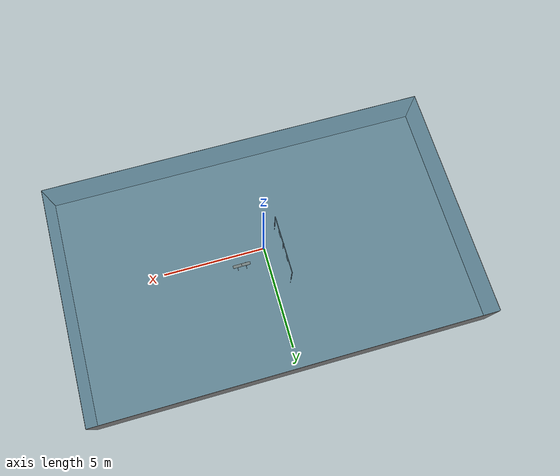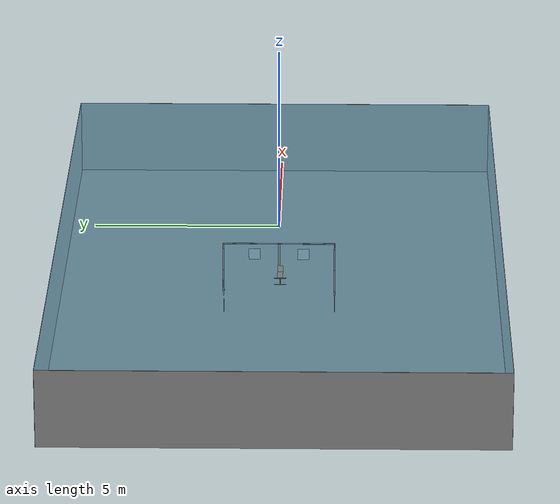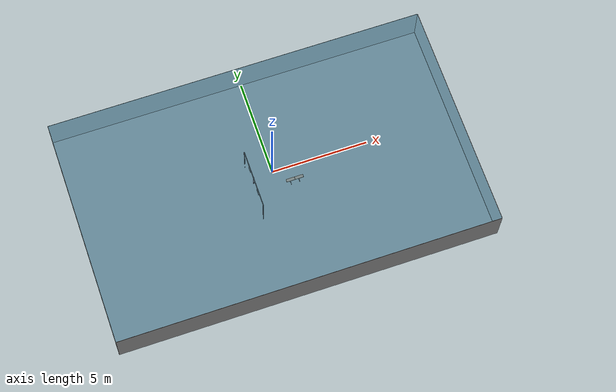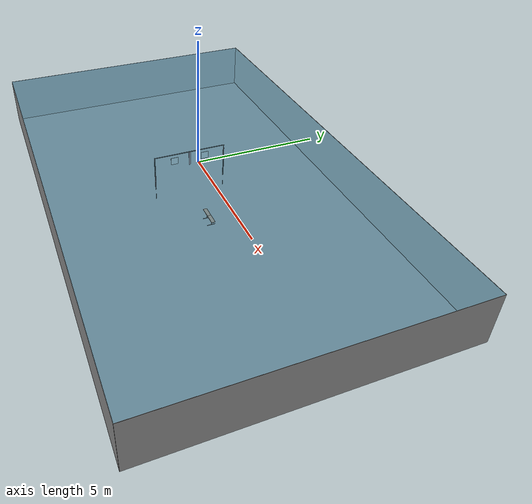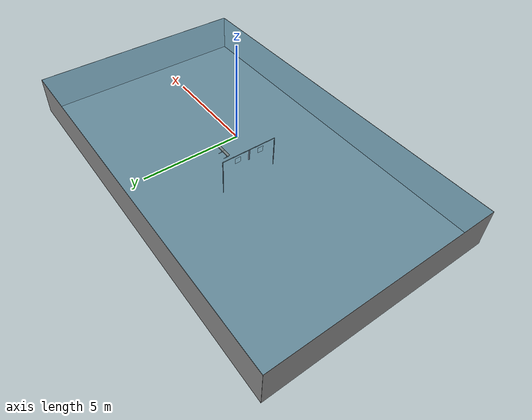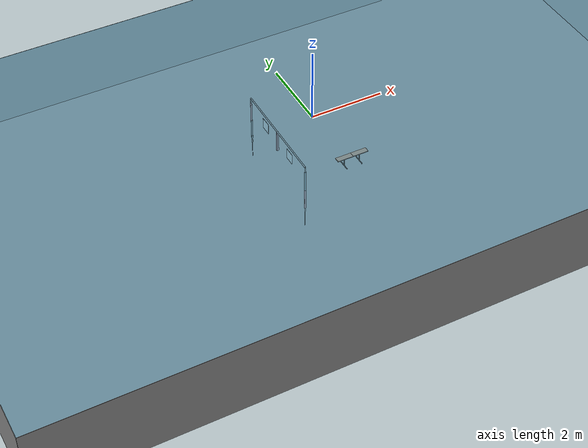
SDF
<sdf version="1.9">
 <world name="rs_task_gate">
  <plugin filename="gz-sim-particle-emitter-system" name="gz::sim::systems::ParticleEmitter"/>
  <plugin filename="gz-sim-physics-system" name="gz::sim::systems::Physics"/>
  <plugin filename="gz-sim-user-commands-system" name="gz::sim::systems::UserCommands"/>
  <plugin filename="gz-sim-scene-broadcaster-system" name="gz::sim::systems::SceneBroadcaster"/>
  <plugin filename="gz-sim-apply-link-wrench-system" name="gz::sim::systems::ApplyLinkWrench"/>
  <plugin filename="gz-sim-imu-system" name="gz::sim::systems::Imu"/>
  <plugin filename="gz-sim-sensors-system" name="gz::sim::systems::Sensors">
   <render_engine>ogre2</render_engine>
  </plugin>
  <plugin filename="gz-sim-dvl-system" name="gz::sim::systems::DopplerVelocityLogSystem"/>
  <plugin filename="gz-sim-buoyancy-system" name="gz::sim::systems::Buoyancy">
   <graded_buoyancy>
    <default_density>1000</default_density>
    <density_change><above_depth>0</above_depth><density>1</density></density_change>
   </graded_buoyancy>
   <enable>mongla</enable>
   <enable>gate</enable>
   <enable>payload_shot_0</enable>
   <enable>payload_shot_1</enable>
   <enable>payload_shot_2</enable>
   <enable>payload_shot_3</enable>
   <enable>payload_shot_4</enable>
   <enable>payload_shot_5</enable>
   <enable>payload_shot_6</enable>
   <enable>payload_shot_7</enable>
   <enable>payload_shot_8</enable>
   <enable>payload_shot_9</enable>
   <enable>payload_shot_10</enable>
   <enable>payload_shot_11</enable>
  </plugin>
  <physics name="default" type="dart">
   <max_step_size>0.001</max_step_size>
   <real_time_factor>1.0</real_time_factor>
   <real_time_update_rate>1000</real_time_update_rate>
   <dart>
    <collision_detector>bullet</collision_detector>
    <solver><solver_type>dantzig</solver_type></solver>
   </dart>
  </physics>
  <gravity>0 0 -9.81</gravity>
  <magnetic_field>3.9e-05 1.1e-06 2.6e-05</magnetic_field>
  <atmosphere type="adiabatic"/>
  <scene>
   <ambient>0.4 0.5 0.55 1</ambient>
   <background>0.08 0.26 0.4 1</background>
   <shadows>true</shadows>
   <fog>
    <color>0.14 0.34 0.42 1</color>
    <type>linear</type>
    <start>3.0</start>
    <end>40.0</end>
    <density>0.01</density>
   </fog>
  </scene>
  <light type="directional" name="sun">
   <pose>0 0 10 0 0 0</pose>
   <diffuse>0.48 0.52 0.56 1</diffuse>
   <specular>0.10 0.10 0.11 1</specular>
   <direction>-0.4 0.15 -0.9</direction>
  </light>
  <light type="directional" name="fill">
   <cast_shadows>false</cast_shadows>
   <pose>0 0 5 0 0 0</pose>
   <diffuse>0.22 0.28 0.34 1</diffuse>
   <specular>0.04 0.05 0.06 1</specular>
   <direction>0.3 -0.2 -1</direction>
  </light>
  <light type="directional" name="caustic_fill">
   <cast_shadows>false</cast_shadows>
   <pose>0 0 3 0 0 0</pose>
   <diffuse>0.12 0.22 0.26 1</diffuse>
   <specular>0.02 0.03 0.04 1</specular>
   <direction>0.1 0.35 -0.85</direction>
  </light>
  <model name="robosub_pool">
   <static>true</static>
   <link name="floor">
    <pose>0 0 -2.1 0 0 0</pose>
    <inertial>
     <mass>1000</mass>
     <inertia><ixx>1000</ixx><ixy>0</ixy><ixz>0</ixz><iyy>1000</iyy><iyz>0</iyz><izz>1000</izz></inertia>
    </inertial>
    <visual name="floor_visual">
     <pose>0 0 0.005 0 0 0</pose>
     <geometry><box><size>20 12 0.01</size></box></geometry>
     <material>
      <ambient>0.55 0.55 0.55 1</ambient>
      <diffuse>0.55 0.55 0.55 1</diffuse>
      <specular>0.08 0.08 0.08 1</specular>
      <emissive>0 0 0 1</emissive>
      <pbr>
       <metal>
        <albedo_map>model://robosub_textures/pool_floor.png</albedo_map>
        <metalness>0.0</metalness>
        <roughness>0.85</roughness>
       </metal>
      </pbr>
     </material>
    </visual>
    <collision name="floor_collision">
     <pose>0 0 -0.05 0 0 0</pose>
     <geometry><box><size>20 12 0.1</size></box></geometry>
    </collision>
   </link>
   <link name="wall_x_pos">
    <inertial>
     <mass>1000</mass>
     <inertia><ixx>1000</ixx><ixy>0</ixy><ixz>0</ixz><iyy>1000</iyy><iyz>0</iyz><izz>1000</izz></inertia>
    </inertial>
    <visual name="wall_x_pos_visual">
     <pose>10 0 -1.05 0 0 0</pose>
     <geometry><box><size>0.01 12 2.1</size></box></geometry>
     <material>
      <ambient>0.55 0.55 0.55 1</ambient>
      <diffuse>0.55 0.55 0.55 1</diffuse>
      <specular>0.08 0.08 0.08 1</specular>
      <emissive>0 0 0 1</emissive>
      <pbr>
       <metal>
        <albedo_map>model://robosub_textures/pool_wall_long.png</albedo_map>
        <metalness>0.0</metalness>
        <roughness>0.85</roughness>
       </metal>
      </pbr>
     </material>
    </visual>
    <collision name="wall_x_pos_collision">
     <pose>10.105 0 -1.05 0 0 0</pose>
     <geometry><box><size>0.2 12.4 2.1</size></box></geometry>
    </collision>
   </link>
   <link name="wall_x_neg">
    <inertial>
     <mass>1000</mass>
     <inertia><ixx>1000</ixx><ixy>0</ixy><ixz>0</ixz><iyy>1000</iyy><iyz>0</iyz><izz>1000</izz></inertia>
    </inertial>
    <visual name="wall_x_neg_visual">
     <pose>-10 0 -1.05 0 0 0</pose>
     <geometry><box><size>0.01 12 2.1</size></box></geometry>
     <material>
      <ambient>0.55 0.55 0.55 1</ambient>
      <diffuse>0.55 0.55 0.55 1</diffuse>
      <specular>0.08 0.08 0.08 1</specular>
      <emissive>0 0 0 1</emissive>
      <pbr>
       <metal>
        <albedo_map>model://robosub_textures/pool_wall_long.png</albedo_map>
        <metalness>0.0</metalness>
        <roughness>0.85</roughness>
       </metal>
      </pbr>
     </material>
    </visual>
    <collision name="wall_x_neg_collision">
     <pose>-10.105 0 -1.05 0 0 0</pose>
     <geometry><box><size>0.2 12.4 2.1</size></box></geometry>
    </collision>
   </link>
   <link name="wall_y_pos">
    <inertial>
     <mass>1000</mass>
     <inertia><ixx>1000</ixx><ixy>0</ixy><ixz>0</ixz><iyy>1000</iyy><iyz>0</iyz><izz>1000</izz></inertia>
    </inertial>
    <visual name="wall_y_pos_visual">
     <pose>0 6 -1.05 0 0 0</pose>
     <geometry><box><size>20 0.01 2.1</size></box></geometry>
     <material>
      <ambient>0.55 0.55 0.55 1</ambient>
      <diffuse>0.55 0.55 0.55 1</diffuse>
      <specular>0.08 0.08 0.08 1</specular>
      <emissive>0 0 0 1</emissive>
      <pbr>
       <metal>
        <albedo_map>model://robosub_textures/pool_wall_short.png</albedo_map>
        <metalness>0.0</metalness>
        <roughness>0.85</roughness>
       </metal>
      </pbr>
     </material>
    </visual>
    <collision name="wall_y_pos_collision">
     <pose>0 6.105 -1.05 0 0 0</pose>
     <geometry><box><size>20 0.2 2.1</size></box></geometry>
    </collision>
   </link>
   <link name="wall_y_neg">
    <inertial>
     <mass>1000</mass>
     <inertia><ixx>1000</ixx><ixy>0</ixy><ixz>0</ixz><iyy>1000</iyy><iyz>0</iyz><izz>1000</izz></inertia>
    </inertial>
    <visual name="wall_y_neg_visual">
     <pose>0 -6 -1.05 0 0 0</pose>
     <geometry><box><size>20 0.01 2.1</size></box></geometry>
     <material>
      <ambient>0.55 0.55 0.55 1</ambient>
      <diffuse>0.55 0.55 0.55 1</diffuse>
      <specular>0.08 0.08 0.08 1</specular>
      <emissive>0 0 0 1</emissive>
      <pbr>
       <metal>
        <albedo_map>model://robosub_textures/pool_wall_short.png</albedo_map>
        <metalness>0.0</metalness>
        <roughness>0.85</roughness>
       </metal>
      </pbr>
     </material>
    </visual>
    <collision name="wall_y_neg_collision">
     <pose>0 -6.105 -1.05 0 0 0</pose>
     <geometry><box><size>20 0.2 2.1</size></box></geometry>
    </collision>
   </link>
   <link name="water_surface">
    <inertial>
     <mass>1</mass>
     <inertia><ixx>1</ixx><ixy>0</ixy><ixz>0</ixz><iyy>1</iyy><iyz>0</iyz><izz>1</izz></inertia>
    </inertial>
    <visual name="water_surface_visual">
     <cast_shadows>false</cast_shadows>
     <transparency>0.18</transparency>
     <geometry><mesh><uri>model://robosub_meshes/meshes/water_robosub.obj</uri></mesh></geometry>
     <material>
      <ambient>0.42 0.6 0.68 1</ambient>
      <diffuse>0.42 0.6 0.68 1</diffuse>
      <specular>0.35 0.35 0.35 1</specular>
      <emissive>0.1 0.1 0.1 1</emissive>
      <pbr>
       <metal>
        <albedo_map>model://robosub_textures/water_surface.png</albedo_map>
        <metalness>0.0</metalness>
        <roughness>0.15</roughness>
       </metal>
      </pbr>
     </material>
    </visual>
   </link>
  </model>
  <model name="marine_snow">
   <static>true</static>
   <pose>0 0 -1.05 0 0 0</pose>
   <link name="link">
    <particle_emitter name="snow" type="box">
     <emitting>true</emitting>
     <size>12 12 2.1</size>
     <particle_size>0.006 0.006 0.006</particle_size>
     <lifetime>30</lifetime>
     <min_velocity>0.004</min_velocity>
     <max_velocity>0.025</max_velocity>
     <scale_rate>0</scale_rate>
     <rate>900</rate>
     <topic>marine_snow</topic>
     <material>
      <diffuse>0.80 0.84 0.80</diffuse>
      <specular>0.05 0.05 0.05</specular>
      <pbr><metal><albedo_map>model://robosub_textures/marine_snow.png</albedo_map></metal></pbr>
     </material>
    </particle_emitter>
   </link>
  </model>
  <include><uri>model://robosub_gate</uri><name>gate</name><pose>-1 0 0 0 0 0</pose></include>
  <include><uri>model://robosub_path_marker</uri><name>path_out</name><pose>1.2 0 -2.1 0 0 0</pose></include>
 </world>
</sdf>

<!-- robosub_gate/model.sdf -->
<sdf version="1.9">
  <model name="robosub_gate">
    <static>false</static>
    <plugin filename="gz-sim-label-system" name="gz::sim::systems::Label">
      <label>12</label>
    </plugin>
    <link name="top_bar">
      <pose>0 0 -0.1 1.5708 0 0</pose>
      <inertial>
        <pose>0 0 0 0 0 0</pose>
        <mass>5</mass>
        <inertia>
          <ixx>3.75035</ixx><ixy>0</ixy><ixz>0</ixz>
          <iyy>3.75035</iyy><iyz>0</iyz>
          <izz>0.000697225</izz>
        </inertia>
      </inertial>
      <visual name="top_bar_visual">
        <pose>0 0 0 0 0 0</pose>
        <geometry><cylinder><radius>0.0167</radius><length>3</length></cylinder></geometry>
        <material>
          <ambient>0.92 0.92 0.92 1</ambient>
          <diffuse>0.92 0.92 0.92 1</diffuse>
          <specular>0.55 0.55 0.55 1</specular>
          <emissive>0.258 0.258 0.258 1</emissive>
          <pbr>
            <metal>
              <albedo_map>model://robosub_textures/albedo_pvc.png</albedo_map>
              <metalness>0.0</metalness>
              <roughness_map>model://robosub_textures/rough_pvc.png</roughness_map>
              <normal_map>model://robosub_textures/norm_pvc.png</normal_map>
            </metal>
          </pbr>
        </material>
      </visual>
      <collision name="top_bar_collision">
        <pose>0 0 0 0 0 0</pose>
        <geometry><cylinder><radius>0.0167</radius><length>3</length></cylinder></geometry>
      </collision>
    </link>
    <link name="post_port">
      <pose>0 -1.5 -0.85 0 0 0</pose>
      <inertial>
        <pose>0 0 0 0 0 0</pose>
        <mass>4</mass>
        <inertia>
          <ixx>0.750279</ixx><ixy>0</ixy><ixz>0</ixz>
          <iyy>0.750279</iyy><iyz>0</iyz>
          <izz>0.00055778</izz>
        </inertia>
      </inertial>
      <visual name="post_port_visual">
        <pose>0 0 0 0 0 0</pose>
        <geometry><cylinder><radius>0.0167</radius><length>1.5</length></cylinder></geometry>
        <material>
          <ambient>0.92 0.92 0.92 1</ambient>
          <diffuse>0.92 0.92 0.92 1</diffuse>
          <specular>0.55 0.55 0.55 1</specular>
          <emissive>0.258 0.258 0.258 1</emissive>
          <pbr>
            <metal>
              <albedo_map>model://robosub_textures/albedo_pvc.png</albedo_map>
              <metalness>0.0</metalness>
              <roughness_map>model://robosub_textures/rough_pvc.png</roughness_map>
              <normal_map>model://robosub_textures/norm_pvc.png</normal_map>
            </metal>
          </pbr>
        </material>
      </visual>
      <collision name="post_port_collision">
        <pose>0 0 0 0 0 0</pose>
        <geometry><cylinder><radius>0.0167</radius><length>1.5</length></cylinder></geometry>
      </collision>
    </link>
    <link name="band_port_upper">
      <pose>0 -1.5 -0.5572 0 0 0</pose>
      <inertial>
        <pose>0 0 0 0 0 0</pose>
        <mass>0.4</mass>
        <inertia>
          <ixx>0.0124306</ixx><ixy>0</ixy><ixz>0</ixz>
          <iyy>0.0124306</iyy><iyz>0</iyz>
          <izz>8.71531e-05</izz>
        </inertia>
      </inertial>
      <visual name="band_port_upper_visual">
        <pose>0 0 0 0 0 0</pose>
        <geometry><cylinder><radius>0.020875</radius><length>0.6096</length></cylinder></geometry>
        <material>
          <ambient>0.07 0.07 0.08 1</ambient>
          <diffuse>0.07 0.07 0.08 1</diffuse>
          <specular>0.2 0.2 0.2 1</specular>
          <emissive>0.0154 0.0154 0.0176 1</emissive>
        </material>
      </visual>
    </link>
    <link name="band_port_lower">
      <pose>0 -1.5 -1.1668 0 0 0</pose>
      <inertial>
        <pose>0 0 0 0 0 0</pose>
        <mass>0.4</mass>
        <inertia>
          <ixx>0.0124306</ixx><ixy>0</ixy><ixz>0</ixz>
          <iyy>0.0124306</iyy><iyz>0</iyz>
          <izz>8.71531e-05</izz>
        </inertia>
      </inertial>
      <visual name="band_port_lower_visual">
        <pose>0 0 0 0 0 0</pose>
        <geometry><cylinder><radius>0.020875</radius><length>0.6096</length></cylinder></geometry>
        <material>
          <ambient>0.72 0.11 0.13 1</ambient>
          <diffuse>0.72 0.11 0.13 1</diffuse>
          <specular>0.2 0.2 0.2 1</specular>
          <emissive>0.1584 0.0242 0.0286 1</emissive>
        </material>
      </visual>
    </link>
    <link name="post_stbd">
      <pose>0 1.5 -0.85 0 0 0</pose>
      <inertial>
        <pose>0 0 0 0 0 0</pose>
        <mass>4</mass>
        <inertia>
          <ixx>0.750279</ixx><ixy>0</ixy><ixz>0</ixz>
          <iyy>0.750279</iyy><iyz>0</iyz>
          <izz>0.00055778</izz>
        </inertia>
      </inertial>
      <visual name="post_stbd_visual">
        <pose>0 0 0 0 0 0</pose>
        <geometry><cylinder><radius>0.0167</radius><length>1.5</length></cylinder></geometry>
        <material>
          <ambient>0.92 0.92 0.92 1</ambient>
          <diffuse>0.92 0.92 0.92 1</diffuse>
          <specular>0.55 0.55 0.55 1</specular>
          <emissive>0.258 0.258 0.258 1</emissive>
          <pbr>
            <metal>
              <albedo_map>model://robosub_textures/albedo_pvc.png</albedo_map>
              <metalness>0.0</metalness>
              <roughness_map>model://robosub_textures/rough_pvc.png</roughness_map>
              <normal_map>model://robosub_textures/norm_pvc.png</normal_map>
            </metal>
          </pbr>
        </material>
      </visual>
      <collision name="post_stbd_collision">
        <pose>0 0 0 0 0 0</pose>
        <geometry><cylinder><radius>0.0167</radius><length>1.5</length></cylinder></geometry>
      </collision>
    </link>
    <link name="band_stbd_upper">
      <pose>0 1.5 -0.5572 0 0 0</pose>
      <inertial>
        <pose>0 0 0 0 0 0</pose>
        <mass>0.4</mass>
        <inertia>
          <ixx>0.0124306</ixx><ixy>0</ixy><ixz>0</ixz>
          <iyy>0.0124306</iyy><iyz>0</iyz>
          <izz>8.71531e-05</izz>
        </inertia>
      </inertial>
      <visual name="band_stbd_upper_visual">
        <pose>0 0 0 0 0 0</pose>
        <geometry><cylinder><radius>0.020875</radius><length>0.6096</length></cylinder></geometry>
        <material>
          <ambient>0.72 0.11 0.13 1</ambient>
          <diffuse>0.72 0.11 0.13 1</diffuse>
          <specular>0.2 0.2 0.2 1</specular>
          <emissive>0.1584 0.0242 0.0286 1</emissive>
        </material>
      </visual>
    </link>
    <link name="band_stbd_lower">
      <pose>0 1.5 -1.1668 0 0 0</pose>
      <inertial>
        <pose>0 0 0 0 0 0</pose>
        <mass>0.4</mass>
        <inertia>
          <ixx>0.0124306</ixx><ixy>0</ixy><ixz>0</ixz>
          <iyy>0.0124306</iyy><iyz>0</iyz>
          <izz>8.71531e-05</izz>
        </inertia>
      </inertial>
      <visual name="band_stbd_lower_visual">
        <pose>0 0 0 0 0 0</pose>
        <geometry><cylinder><radius>0.020875</radius><length>0.6096</length></cylinder></geometry>
        <material>
          <ambient>0.07 0.07 0.08 1</ambient>
          <diffuse>0.07 0.07 0.08 1</diffuse>
          <specular>0.2 0.2 0.2 1</specular>
          <emissive>0.0154 0.0154 0.0176 1</emissive>
        </material>
      </visual>
    </link>
    <link name="divider">
      <pose>0 0 -0.4048 0 0 0</pose>
      <inertial>
        <pose>0 0 0 0 0 0</pose>
        <mass>0.5</mass>
        <inertia>
          <ixx>0.0155914</ixx><ixy>0</ixy><ixz>0</ixz>
          <iyy>0.0155914</iyy><iyz>0</iyz>
          <izz>0.000215053</izz>
        </inertia>
      </inertial>
      <visual name="divider_visual">
        <pose>0 0 0 0 0 0</pose>
        <geometry><box><size>0.0508 0.0508 0.6096</size></box></geometry>
        <material>
          <ambient>0.72 0.11 0.13 1</ambient>
          <diffuse>0.72 0.11 0.13 1</diffuse>
          <specular>0.2 0.2 0.2 1</specular>
          <emissive>0.1584 0.0242 0.0286 1</emissive>
        </material>
      </visual>
      <collision name="divider_collision">
        <pose>0 0 0 0 0 0</pose>
        <geometry><box><size>0.0508 0.0508 0.6096</size></box></geometry>
      </collision>
    </link>
    <link name="sign_survey_repair">
      <pose>0 -0.66 -0.4049 0 0 0</pose>
      <inertial>
        <pose>0 0 0 0 0 0</pose>
        <mass>0.15</mass>
        <inertia>
          <ixx>0.00232562</ixx><ixy>0</ixy><ixz>0</ixz>
          <iyy>0.00116301</iyy><iyz>0</iyz>
          <izz>0.00116301</izz>
        </inertia>
      </inertial>
      <visual name="sign_survey_repair_visual">
        <pose>0 0 0 0 0 0</pose>
        <geometry><box><size>0.004 0.305 0.305</size></box></geometry>
        <material>
          <ambient>1 1 1 1</ambient>
          <diffuse>1 1 1 1</diffuse>
          <specular>0.06 0.06 0.06 1</specular>
          <emissive>0.1 0.1 0.1 1</emissive>
          <pbr>
            <metal>
              <albedo_map>model://robosub_textures/role_compass.png</albedo_map>
              <metalness>0.0</metalness>
              <roughness>0.55</roughness>
            </metal>
          </pbr>
        </material>
      </visual>
      <collision name="sign_survey_repair_collision">
        <pose>0 0 0 0 0 0</pose>
        <geometry><box><size>0.004 0.305 0.305</size></box></geometry>
      </collision>
    </link>
    <link name="sign_search_rescue">
      <pose>0 0.66 -0.4049 0 0 0</pose>
      <inertial>
        <pose>0 0 0 0 0 0</pose>
        <mass>0.15</mass>
        <inertia>
          <ixx>0.00232562</ixx><ixy>0</ixy><ixz>0</ixz>
          <iyy>0.00116301</iyy><iyz>0</iyz>
          <izz>0.00116301</izz>
        </inertia>
      </inertial>
      <visual name="sign_search_rescue_visual">
        <pose>0 0 0 0 0 0</pose>
        <geometry><box><size>0.004 0.305 0.305</size></box></geometry>
        <material>
          <ambient>1 1 1 1</ambient>
          <diffuse>1 1 1 1</diffuse>
          <specular>0.06 0.06 0.06 1</specular>
          <emissive>0.1 0.1 0.1 1</emissive>
          <pbr>
            <metal>
              <albedo_map>model://robosub_textures/role_sos.png</albedo_map>
              <metalness>0.0</metalness>
              <roughness>0.55</roughness>
            </metal>
          </pbr>
        </material>
      </visual>
      <collision name="sign_search_rescue_collision">
        <pose>0 0 0 0 0 0</pose>
        <geometry><box><size>0.004 0.305 0.305</size></box></geometry>
      </collision>
    </link>
    <link name="mooring_port">
      <pose>0 -1.5 -1.85 0 0 0</pose>
      <inertial>
        <pose>0 0 0 0 0 0</pose>
        <mass>0.1</mass>
        <inertia>
          <ixx>0.00208423</ixx><ixy>0</ixy><ixz>0</ixz>
          <iyy>0.00208423</iyy><iyz>0</iyz>
          <izz>1.8e-06</izz>
        </inertia>
      </inertial>
      <visual name="mooring_port_visual">
        <pose>0 0 0 0 0 0</pose>
        <geometry><cylinder><radius>0.006</radius><length>0.5</length></cylinder></geometry>
        <material>
          <ambient>0.15 0.15 0.14 1</ambient>
          <diffuse>0.15 0.15 0.14 1</diffuse>
          <specular>0.2 0.2 0.2 1</specular>
          <emissive>0.0375 0.0375 0.035 1</emissive>
        </material>
      </visual>
    </link>
    <link name="mooring_stbd">
      <pose>0 1.5 -1.85 0 0 0</pose>
      <inertial>
        <pose>0 0 0 0 0 0</pose>
        <mass>0.1</mass>
        <inertia>
          <ixx>0.00208423</ixx><ixy>0</ixy><ixz>0</ixz>
          <iyy>0.00208423</iyy><iyz>0</iyz>
          <izz>1.8e-06</izz>
        </inertia>
      </inertial>
      <visual name="mooring_stbd_visual">
        <pose>0 0 0 0 0 0</pose>
        <geometry><cylinder><radius>0.006</radius><length>0.5</length></cylinder></geometry>
        <material>
          <ambient>0.15 0.15 0.14 1</ambient>
          <diffuse>0.15 0.15 0.14 1</diffuse>
          <specular>0.2 0.2 0.2 1</specular>
          <emissive>0.0375 0.0375 0.035 1</emissive>
        </material>
      </visual>
    </link>
    <joint name="top_bar_post_port_fix" type="fixed">
      <parent>top_bar</parent>
      <child>post_port</child>
    </joint>
    <joint name="top_bar_post_stbd_fix" type="fixed">
      <parent>top_bar</parent>
      <child>post_stbd</child>
    </joint>
    <joint name="top_bar_band_port_upper_fix" type="fixed">
      <parent>top_bar</parent>
      <child>band_port_upper</child>
    </joint>
    <joint name="top_bar_band_port_lower_fix" type="fixed">
      <parent>top_bar</parent>
      <child>band_port_lower</child>
    </joint>
    <joint name="top_bar_band_stbd_upper_fix" type="fixed">
      <parent>top_bar</parent>
      <child>band_stbd_upper</child>
    </joint>
    <joint name="top_bar_band_stbd_lower_fix" type="fixed">
      <parent>top_bar</parent>
      <child>band_stbd_lower</child>
    </joint>
    <joint name="top_bar_mooring_port_fix" type="fixed">
      <parent>top_bar</parent>
      <child>mooring_port</child>
    </joint>
    <joint name="top_bar_mooring_stbd_fix" type="fixed">
      <parent>top_bar</parent>
      <child>mooring_stbd</child>
    </joint>
    <joint name="gate_mooring" type="fixed">
      <parent>world</parent>
      <child>top_bar</child>
    </joint>
    <joint name="sign_survey_repair_hinge" type="revolute">
      <parent>top_bar</parent>
      <child>sign_survey_repair</child>
      <pose>0 0 0.1525 0 0 0</pose>
      <axis>
        <xyz>0 1 0</xyz>
        <limit>
          <lower>-1</lower>
          <upper>1</upper>
        </limit>
        <dynamics>
          <damping>0.4</damping>
          <spring_stiffness>3</spring_stiffness>
          <spring_reference>0</spring_reference>
        </dynamics>
      </axis>
    </joint>
    <plugin filename="gz-sim-hydrodynamics-system" name="gz::sim::systems::Hydrodynamics">
      <link_name>sign_survey_repair</link_name>
      <water_density>1000.0</water_density>
      <xUabsU>-55.815</xUabsU>
      <yVabsV>-55.815</yVabsV>
      <zWabsW>-0.732</zWabsW>
      <kPabsP>-1.29805</kPabsP>
      <mQabsQ>-1.29805</mQabsQ>
      <nRabsR>-1.29805</nRabsR>
    </plugin>
    <joint name="sign_search_rescue_hinge" type="revolute">
      <parent>top_bar</parent>
      <child>sign_search_rescue</child>
      <pose>0 0 0.1525 0 0 0</pose>
      <axis>
        <xyz>0 1 0</xyz>
        <limit>
          <lower>-1</lower>
          <upper>1</upper>
        </limit>
        <dynamics>
          <damping>0.4</damping>
          <spring_stiffness>3</spring_stiffness>
          <spring_reference>0</spring_reference>
        </dynamics>
      </axis>
    </joint>
    <plugin filename="gz-sim-hydrodynamics-system" name="gz::sim::systems::Hydrodynamics">
      <link_name>sign_search_rescue</link_name>
      <water_density>1000.0</water_density>
      <xUabsU>-55.815</xUabsU>
      <yVabsV>-55.815</yVabsV>
      <zWabsW>-0.732</zWabsW>
      <kPabsP>-1.29805</kPabsP>
      <mQabsQ>-1.29805</mQabsQ>
      <nRabsR>-1.29805</nRabsR>
    </plugin>
    <joint name="divider_hinge" type="revolute">
      <parent>top_bar</parent>
      <child>divider</child>
      <pose>0 0 0.3048 0 0 0</pose>
      <axis>
        <xyz>0 1 0</xyz>
        <limit>
          <lower>-1</lower>
          <upper>1</upper>
        </limit>
        <dynamics>
          <damping>0.8</damping>
          <spring_stiffness>6</spring_stiffness>
          <spring_reference>0</spring_reference>
        </dynamics>
      </axis>
    </joint>
    <plugin filename="gz-sim-hydrodynamics-system" name="gz::sim::systems::Hydrodynamics">
      <link_name>divider</link_name>
      <water_density>1000.0</water_density>
      <xUabsU>-222.967</xUabsU>
      <yVabsV>-222.967</yVabsV>
      <zWabsW>-18.5806</zWabsW>
      <kPabsP>-20.7143</kPabsP>
      <mQabsQ>-20.7143</mQabsQ>
      <nRabsR>-20.7143</nRabsR>
    </plugin>
  </model>
</sdf>

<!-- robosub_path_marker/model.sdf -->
<sdf version="1.9">
  <model name="robosub_path_marker">
    <static>true</static>
    <plugin filename="gz-sim-label-system" name="gz::sim::systems::Label">
      <label>19</label>
    </plugin>
    <link name="segment_0">
      <pose>-0.2286 0 0.3 0 0 0</pose>
      <inertial>
        <pose>0 0 0 0 0 0</pose>
        <mass>0.6</mass>
        <inertia>
          <ixx>0.00118129</ixx><ixy>0</ixy><ixz>0</ixz>
          <iyy>0.0104716</iyy><iyz>0</iyz>
          <izz>0.0116129</izz>
        </inertia>
      </inertial>
      <visual name="segment_0_visual">
        <pose>0 0 0 0 0 0</pose>
        <geometry><box><size>0.4572 0.1524 0.02</size></box></geometry>
        <material>
          <ambient>0.95 0.42 0.05 1</ambient>
          <diffuse>0.95 0.42 0.05 1</diffuse>
          <specular>0.2 0.2 0.2 1</specular>
          <emissive>0.304 0.1344 0.016 1</emissive>
        </material>
      </visual>
      <collision name="segment_0_collision">
        <pose>0 0 0 0 0 0</pose>
        <geometry><box><size>0.4572 0.1524 0.02</size></box></geometry>
      </collision>
    </link>
    <link name="stand_0">
      <pose>-0.2286 0 0.15 0 0 0</pose>
      <inertial>
        <pose>0 0 0 0 0 0</pose>
        <mass>0.4</mass>
        <inertia>
          <ixx>0.00301103</ixx><ixy>0</ixy><ixz>0</ixz>
          <iyy>0.00301103</iyy><iyz>0</iyz>
          <izz>2.205e-05</izz>
        </inertia>
      </inertial>
      <visual name="stand_0_visual">
        <pose>0 0 0 0 0 0</pose>
        <geometry><cylinder><radius>0.0105</radius><length>0.3</length></cylinder></geometry>
        <material>
          <ambient>0.92 0.92 0.92 1</ambient>
          <diffuse>0.92 0.92 0.92 1</diffuse>
          <specular>0.55 0.55 0.55 1</specular>
          <emissive>0.258 0.258 0.258 1</emissive>
          <pbr>
            <metal>
              <albedo_map>model://robosub_textures/albedo_pvc.png</albedo_map>
              <metalness>0.0</metalness>
              <roughness_map>model://robosub_textures/rough_pvc.png</roughness_map>
              <normal_map>model://robosub_textures/norm_pvc.png</normal_map>
            </metal>
          </pbr>
        </material>
      </visual>
      <collision name="stand_0_collision">
        <pose>0 0 0 0 0 0</pose>
        <geometry><cylinder><radius>0.0105</radius><length>0.3</length></cylinder></geometry>
      </collision>
    </link>
    <link name="foot_0">
      <pose>-0.2286 0 0.02 1.5708 0 0</pose>
      <inertial>
        <pose>0 0 0 0 0 0</pose>
        <mass>0.4</mass>
        <inertia>
          <ixx>0.00375811</ixx><ixy>0</ixy><ixz>0</ixz>
          <iyy>0.00375811</iyy><iyz>0</iyz>
          <izz>2.205e-05</izz>
        </inertia>
      </inertial>
      <visual name="foot_0_visual">
        <pose>0 0 0 0 0 0</pose>
        <geometry><cylinder><radius>0.0105</radius><length>0.33528</length></cylinder></geometry>
        <material>
          <ambient>0.92 0.92 0.92 1</ambient>
          <diffuse>0.92 0.92 0.92 1</diffuse>
          <specular>0.55 0.55 0.55 1</specular>
          <emissive>0.258 0.258 0.258 1</emissive>
          <pbr>
            <metal>
              <albedo_map>model://robosub_textures/albedo_pvc.png</albedo_map>
              <metalness>0.0</metalness>
              <roughness_map>model://robosub_textures/rough_pvc.png</roughness_map>
              <normal_map>model://robosub_textures/norm_pvc.png</normal_map>
            </metal>
          </pbr>
        </material>
      </visual>
      <collision name="foot_0_collision">
        <pose>0 0 0 0 0 0</pose>
        <geometry><cylinder><radius>0.0105</radius><length>0.33528</length></cylinder></geometry>
      </collision>
    </link>
    <link name="segment_1">
      <pose>0.2286 0 0.3 0 0 0</pose>
      <inertial>
        <pose>0 0 0 0 0 0</pose>
        <mass>0.6</mass>
        <inertia>
          <ixx>0.00118129</ixx><ixy>0</ixy><ixz>0</ixz>
          <iyy>0.0104716</iyy><iyz>0</iyz>
          <izz>0.0116129</izz>
        </inertia>
      </inertial>
      <visual name="segment_1_visual">
        <pose>0 0 0 0 0 0</pose>
        <geometry><box><size>0.4572 0.1524 0.02</size></box></geometry>
        <material>
          <ambient>0.95 0.42 0.05 1</ambient>
          <diffuse>0.95 0.42 0.05 1</diffuse>
          <specular>0.2 0.2 0.2 1</specular>
          <emissive>0.304 0.1344 0.016 1</emissive>
        </material>
      </visual>
      <collision name="segment_1_collision">
        <pose>0 0 0 0 0 0</pose>
        <geometry><box><size>0.4572 0.1524 0.02</size></box></geometry>
      </collision>
    </link>
    <link name="stand_1">
      <pose>0.2286 0 0.15 0 0 0</pose>
      <inertial>
        <pose>0 0 0 0 0 0</pose>
        <mass>0.4</mass>
        <inertia>
          <ixx>0.00301103</ixx><ixy>0</ixy><ixz>0</ixz>
          <iyy>0.00301103</iyy><iyz>0</iyz>
          <izz>2.205e-05</izz>
        </inertia>
      </inertial>
      <visual name="stand_1_visual">
        <pose>0 0 0 0 0 0</pose>
        <geometry><cylinder><radius>0.0105</radius><length>0.3</length></cylinder></geometry>
        <material>
          <ambient>0.92 0.92 0.92 1</ambient>
          <diffuse>0.92 0.92 0.92 1</diffuse>
          <specular>0.55 0.55 0.55 1</specular>
          <emissive>0.258 0.258 0.258 1</emissive>
          <pbr>
            <metal>
              <albedo_map>model://robosub_textures/albedo_pvc.png</albedo_map>
              <metalness>0.0</metalness>
              <roughness_map>model://robosub_textures/rough_pvc.png</roughness_map>
              <normal_map>model://robosub_textures/norm_pvc.png</normal_map>
            </metal>
          </pbr>
        </material>
      </visual>
      <collision name="stand_1_collision">
        <pose>0 0 0 0 0 0</pose>
        <geometry><cylinder><radius>0.0105</radius><length>0.3</length></cylinder></geometry>
      </collision>
    </link>
    <link name="foot_1">
      <pose>0.2286 0 0.02 1.5708 0 0</pose>
      <inertial>
        <pose>0 0 0 0 0 0</pose>
        <mass>0.4</mass>
        <inertia>
          <ixx>0.00375811</ixx><ixy>0</ixy><ixz>0</ixz>
          <iyy>0.00375811</iyy><iyz>0</iyz>
          <izz>2.205e-05</izz>
        </inertia>
      </inertial>
      <visual name="foot_1_visual">
        <pose>0 0 0 0 0 0</pose>
        <geometry><cylinder><radius>0.0105</radius><length>0.33528</length></cylinder></geometry>
        <material>
          <ambient>0.92 0.92 0.92 1</ambient>
          <diffuse>0.92 0.92 0.92 1</diffuse>
          <specular>0.55 0.55 0.55 1</specular>
          <emissive>0.258 0.258 0.258 1</emissive>
          <pbr>
            <metal>
              <albedo_map>model://robosub_textures/albedo_pvc.png</albedo_map>
              <metalness>0.0</metalness>
              <roughness_map>model://robosub_textures/rough_pvc.png</roughness_map>
              <normal_map>model://robosub_textures/norm_pvc.png</normal_map>
            </metal>
          </pbr>
        </material>
      </visual>
      <collision name="foot_1_collision">
        <pose>0 0 0 0 0 0</pose>
        <geometry><cylinder><radius>0.0105</radius><length>0.33528</length></cylinder></geometry>
      </collision>
    </link>
  </model>
</sdf>
